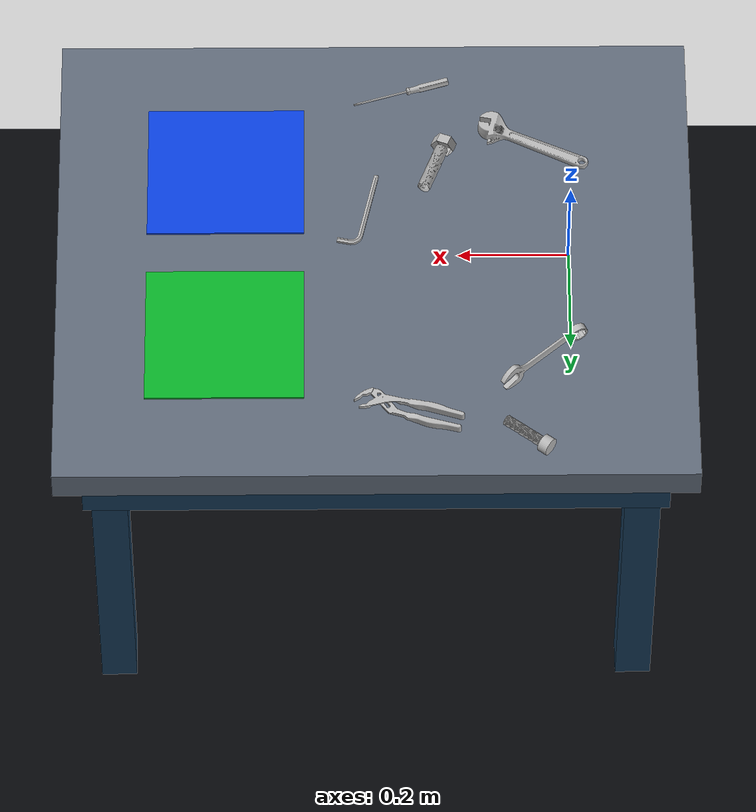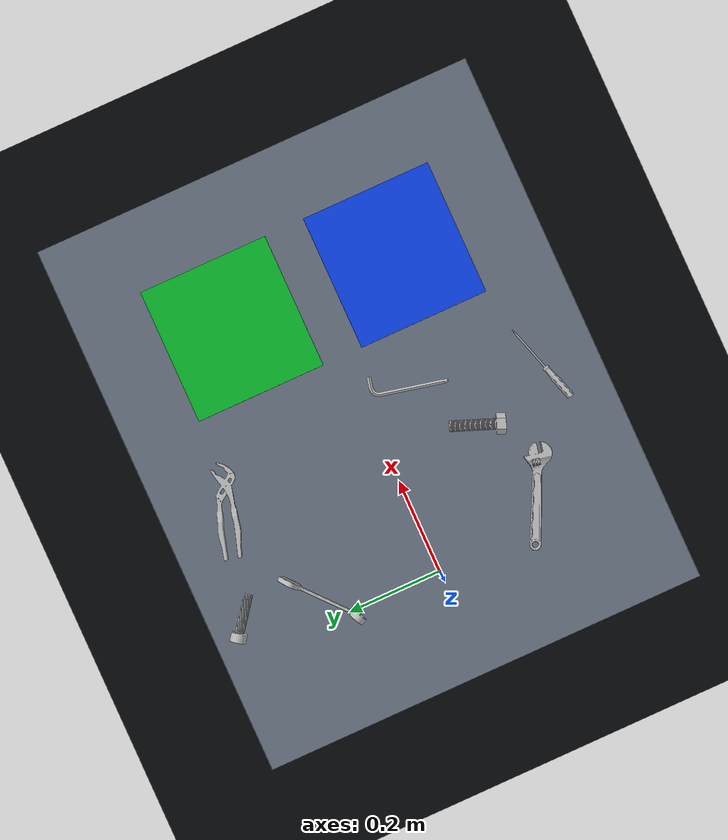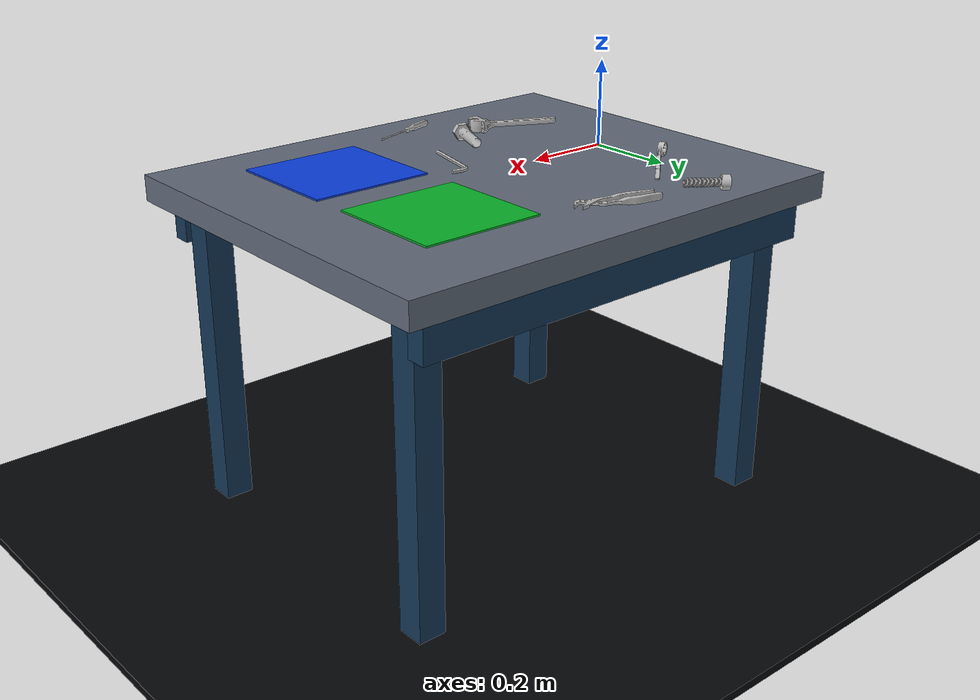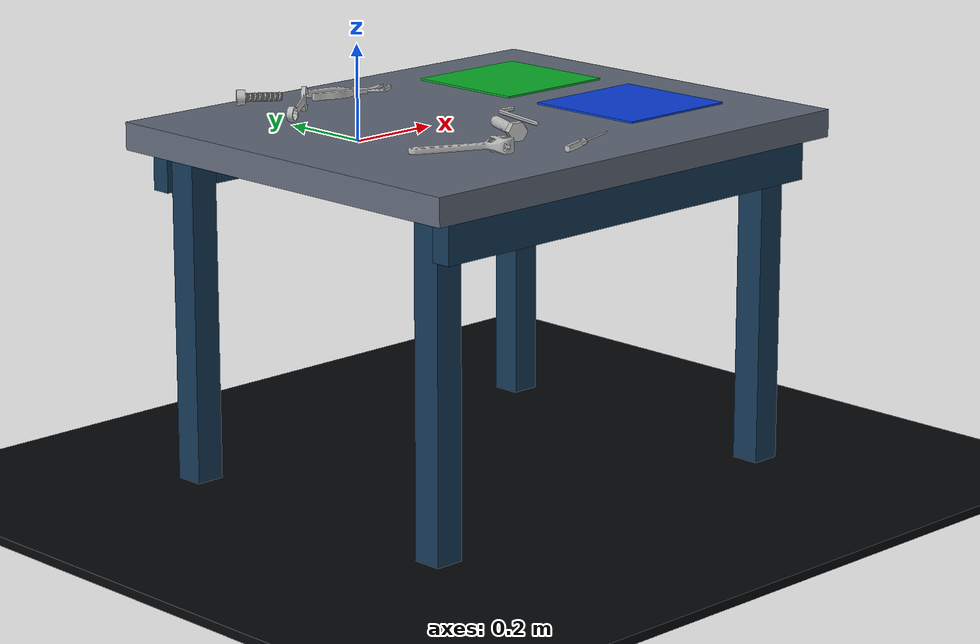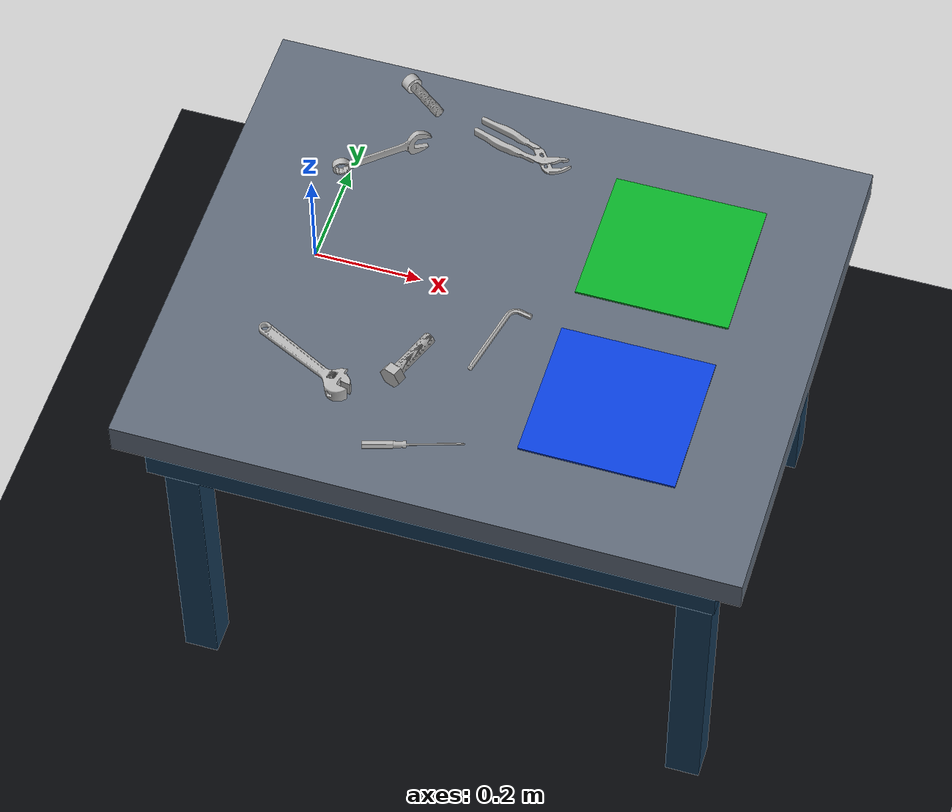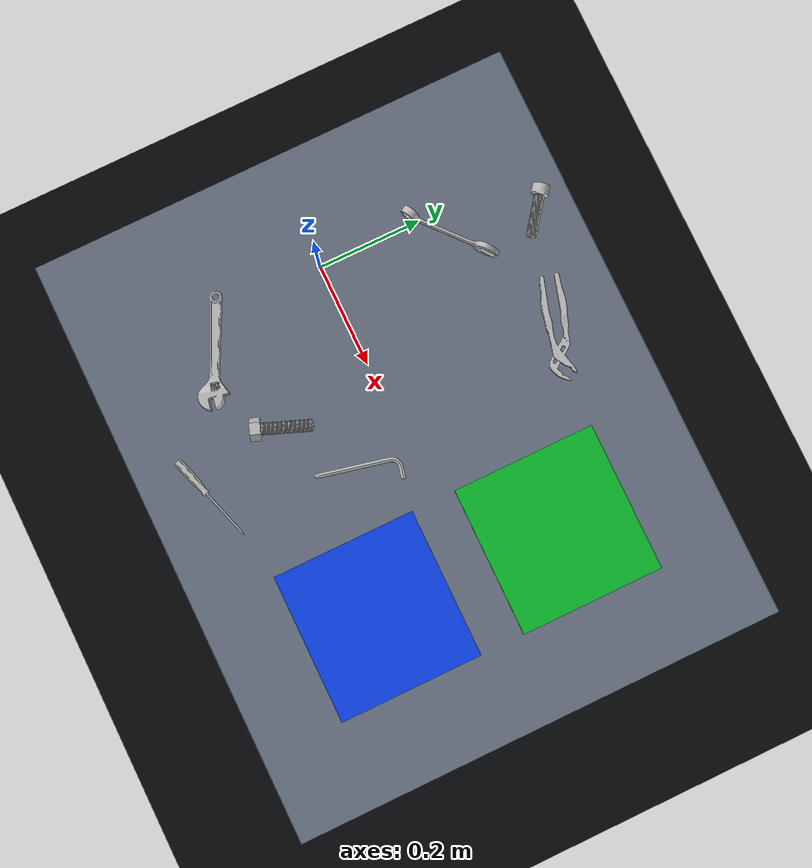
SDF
<sdf version="1.10">
 <world name="rm75_robotiq2f85_pickplace">
  <gravity>0 0 -9.81</gravity>
  <physics name="2ms" type="ignored">
   <max_step_size>0.002</max_step_size>
   <real_time_factor>1.0</real_time_factor>
  </physics>
  <plugin filename="gz-sim-physics-system" name="gz::sim::systems::Physics"/>
  <plugin filename="gz-sim-user-commands-system" name="gz::sim::systems::UserCommands"/>
  <plugin filename="gz-sim-scene-broadcaster-system" name="gz::sim::systems::SceneBroadcaster"/>
  <plugin filename="gz-sim-contact-system" name="gz::sim::systems::Contact"/>
  <plugin filename="libopeneta_attached_collision_filter_system.so" name="openeta::gazebo::AttachedCollisionFilter">
   <target_model>target_object</target_model>
   <target_link>target_link</target_link>
   <state_topic>/openeta/native_grasp/detachable_joint/target/collision_filter_state</state_topic>
   <state_request_topic>/openeta/native_grasp/detachable_joint/target/collision_filter_state/request</state_request_topic>
   <state_ack_topic>/openeta/native_grasp/detachable_joint/target/collision_filter_state/ack</state_ack_topic>
   <robot_mask>1</robot_mask>
   <detached_mask>65535</detached_mask>
   <attached_mask>2</attached_mask>
  </plugin>
  <plugin filename="gz-sim-sensors-system" name="gz::sim::systems::Sensors">
   <render_engine>ogre2</render_engine>
  </plugin>
  <scene>
   <ambient>0.28 0.30 0.34 1</ambient>
   <background>0.10 0.13 0.18 1</background>
   <shadows>true</shadows>
   <grid>false</grid>
  </scene>
  <light name="workcell_key" type="directional">
   <visualize>false</visualize>
   <pose>0 0 3 0 0 0</pose>
   <diffuse>0.64 0.67 0.72 1</diffuse>
   <specular>0.22 0.24 0.28 1</specular>
   <direction>-0.42 0.25 -0.87</direction>
  </light>
  <model name="industrial_floor">
   <static>true</static>
   <pose>0 0 -0.81 0 0 0</pose>
   <link name="floor_link">
    <collision name="floor_collision"><geometry><box><size>8 8 0.02</size></box></geometry></collision>
    <visual name="floor_visual">
     <geometry><box><size>8 8 0.02</size></box></geometry>
     <material>
      <ambient>0.012 0.015 0.021 1</ambient>
      <diffuse>0.022 0.027 0.038 1</diffuse>
      <specular>0.025 0.028 0.034 1</specular>
     </material>
    </visual>
   </link>
  </model>
  <model name="work_table">
   <static>true</static>
   <pose>0.35 0 -0.03 0 0 0</pose>
   <link name="table_link">
    <collision name="table_collision"><geometry><box><size>1.15 0.95 0.06</size></box></geometry></collision>
    <visual name="table_visual">
     <geometry><box><size>1.15 0.95 0.06</size></box></geometry>
     <material>
      <ambient>0.25 0.28 0.32 1</ambient>
      <diffuse>0.38 0.42 0.48 1</diffuse>
      <specular>0.14 0.16 0.19 1</specular>
     </material>
    </visual>
   </link>
  </model>
  <model name="workbench_frame">
   <static>true</static>
   <link name="frame_link">
    <visual name="front_rail">
     <pose>0.35 -0.425 -0.105 0 0 0</pose>
     <geometry><box><size>1.05 0.045 0.09</size></box></geometry>
     <material>
      <ambient>0.055 0.12 0.19 1</ambient>
      <diffuse>0.08 0.22 0.34 1</diffuse>
      <specular>0.18 0.20 0.24 1</specular>
     </material>
    </visual>
    <visual name="rear_rail">
     <pose>0.35 0.425 -0.105 0 0 0</pose>
     <geometry><box><size>1.05 0.045 0.09</size></box></geometry>
     <material>
      <ambient>0.055 0.12 0.19 1</ambient>
      <diffuse>0.08 0.22 0.34 1</diffuse>
      <specular>0.18 0.20 0.24 1</specular>
     </material>
    </visual>
    <collision name="front_rail_collision">
     <pose>0.35 -0.425 -0.105 0 0 0</pose>
     <geometry><box><size>1.05 0.045 0.09</size></box></geometry>
    </collision>
    <collision name="rear_rail_collision">
     <pose>0.35 0.425 -0.105 0 0 0</pose>
     <geometry><box><size>1.05 0.045 0.09</size></box></geometry>
    </collision>
    <visual name="leg_fl">
     <pose>-0.13 -0.37 -0.42 0 0 0</pose>
     <geometry><box><size>0.065 0.065 0.72</size></box></geometry>
     <material><ambient>0.055 0.12 0.19 1</ambient><diffuse>0.08 0.22 0.34 1</diffuse></material>
    </visual>
    <visual name="leg_fr">
     <pose>-0.13 0.37 -0.42 0 0 0</pose>
     <geometry><box><size>0.065 0.065 0.72</size></box></geometry>
     <material><ambient>0.055 0.12 0.19 1</ambient><diffuse>0.08 0.22 0.34 1</diffuse></material>
    </visual>
    <visual name="leg_rl">
     <pose>0.83 -0.37 -0.42 0 0 0</pose>
     <geometry><box><size>0.065 0.065 0.72</size></box></geometry>
     <material><ambient>0.055 0.12 0.19 1</ambient><diffuse>0.08 0.22 0.34 1</diffuse></material>
    </visual>
    <visual name="leg_rr">
     <pose>0.83 0.37 -0.42 0 0 0</pose>
     <geometry><box><size>0.065 0.065 0.72</size></box></geometry>
     <material><ambient>0.055 0.12 0.19 1</ambient><diffuse>0.08 0.22 0.34 1</diffuse></material>
    </visual>
    <collision name="leg_fl_collision">
     <pose>-0.13 -0.37 -0.42 0 0 0</pose>
     <geometry><box><size>0.065 0.065 0.72</size></box></geometry>
    </collision>
    <collision name="leg_fr_collision">
     <pose>-0.13 0.37 -0.42 0 0 0</pose>
     <geometry><box><size>0.065 0.065 0.72</size></box></geometry>
    </collision>
    <collision name="leg_rl_collision">
     <pose>0.83 -0.37 -0.42 0 0 0</pose>
     <geometry><box><size>0.065 0.065 0.72</size></box></geometry>
    </collision>
    <collision name="leg_rr_collision">
     <pose>0.83 0.37 -0.42 0 0 0</pose>
     <geometry><box><size>0.065 0.065 0.72</size></box></geometry>
    </collision>
   </link>
  </model>
  <model name="placement_zone_marker">
   <static>true</static>
   <pose>0.62 0.180 0.014 0 0 0</pose>
   <link name="marker_link">
    <visual name="marker_visual">
     <geometry><box><size>0.285 0.275 0.004</size></box></geometry>
     <material>
      <ambient>0.025 0.34 0.095 1</ambient>
      <diffuse>0.035 0.70 0.16 1</diffuse>
      <specular>0.08 0.10 0.08 1</specular>
     </material>
    </visual>
   </link>
  </model>
  <model name="blue_destination_marker">
   <static>true</static>
   <pose>0.62 -0.180 0.014 0 0 0</pose>
   <link name="marker_link">
    <visual name="marker_visual">
     <geometry><box><size>0.285 0.275 0.004</size></box></geometry>
     <material>
      <ambient>0.025 0.11 0.42 1</ambient>
      <diffuse>0.035 0.25 0.88 1</diffuse>
      <specular>0.08 0.09 0.14 1</specular>
     </material>
    </visual>
   </link>
  </model>
  <model name="target_object">
   <pose>0.06 -0.240 0.015 0 0 -0.45</pose>
   <link name="target_link">
    <inertial>
     <mass>0.30</mass>
     <inertia>
      <ixx>0.0001186</ixx>
      <iyy>0.0012325</iyy>
      <izz>0.0013061</izz>
      <ixy>0</ixy>
      <ixz>0</ixz>
      <iyz>0</iyz>
     </inertia>
    </inertial>
    <collision name="target_handle_collision">
     <pose>-0.025 0 -0.002 0 0 0</pose>
     <geometry><box><size>0.165 0.025 0.026</size></box></geometry>
    </collision>
    <collision name="target_jaw_collision">
     <pose>0.080 0 0 0 0 0</pose>
     <geometry><box><size>0.055 0.062 0.030</size></box></geometry>
    </collision>
    <visual name="target_visual">
     <pose>0 0 -0.0145 0 0 0</pose>
     <geometry>
      <mesh>
       <uri>model://openeta_rm75_robotiq2f85_sim/assets/industrial_workcell/adjustable_wrench.glb</uri>
       <scale>1 1 2.0</scale>
      </mesh>
     </geometry>
    </visual>
   </link>
  </model>
  <model name="silver_box_wrench">
   <pose>0.05 0.240 0.003 0 0 0.45</pose>
   <link name="silver_box_wrench_link">
    <inertial>
     <mass>0.18</mass>
     <inertia><ixx>0.00012</ixx><iyy>0.00055</iyy><izz>0.00058</izz><ixy>0</ixy><ixz>0</ixz><iyz>0</iyz></inertia>
    </inertial>
    <collision name="handle">
     <pose>0 0 0.007 0 0 0</pose>
     <geometry><box><size>0.15 0.022 0.014</size></box></geometry>
    </collision>
    <collision name="head_left">
     <pose>-0.078 0 0.009 0 0 0</pose>
     <geometry><cylinder><radius>0.023</radius><length>0.018</length></cylinder></geometry>
    </collision>
    <collision name="head_right">
     <pose>0.078 0 0.009 0 0 0</pose>
     <geometry><cylinder><radius>0.023</radius><length>0.018</length></cylinder></geometry>
    </collision>
    <visual name="mesh">
     <pose>0 0 0.0015 0 0 0</pose>
     <geometry>
      <mesh><uri>model://openeta_rm75_robotiq2f85_sim/assets/industrial_workcell/box_wrench.glb</uri></mesh>
     </geometry>
    </visual>
   </link>
  </model>
  <model name="red_m24_hex_bolt">
   <pose>0.24 -0.190 0.002 0 0 1.20</pose>
   <link name="red_m24_hex_bolt_link">
    <inertial>
     <mass>0.17</mass>
     <inertia><ixx>0.00005</ixx><iyy>0.00018</iyy><izz>0.00018</izz><ixy>0</ixy><ixz>0</ixz><iyz>0</iyz></inertia>
    </inertial>
    <collision name="shaft">
     <pose>0.012 0 0.012 0 1.57079632679 0</pose>
     <geometry><cylinder><radius>0.012</radius><length>0.095</length></cylinder></geometry>
    </collision>
    <collision name="head">
     <pose>-0.047 0 0.021 0 0 0</pose>
     <geometry><box><size>0.022 0.042 0.042</size></box></geometry>
    </collision>
    <visual name="mesh">
     <pose>0 0 0.0015 0 0 0</pose>
     <geometry>
      <mesh><uri>model://openeta_rm75_robotiq2f85_sim/assets/industrial_workcell/hex_bolt_24mm.glb</uri></mesh>
     </geometry>
    </visual>
   </link>
  </model>
  <model name="orange_m20_socket_bolt">
   <pose>0.08 0.400 0.002 0 0 -0.65</pose>
   <link name="orange_m20_socket_bolt_link">
    <inertial>
     <mass>0.13</mass>
     <inertia><ixx>0.00004</ixx><iyy>0.00013</iyy><izz>0.00013</izz><ixy>0</ixy><ixz>0</ixz><iyz>0</iyz></inertia>
    </inertial>
    <collision name="shaft">
     <pose>0.010 0 0.010 0 1.57079632679 0</pose>
     <geometry><cylinder><radius>0.010</radius><length>0.080</length></cylinder></geometry>
    </collision>
    <collision name="head">
     <pose>-0.040 0 0.017 0 1.57079632679 0</pose>
     <geometry><cylinder><radius>0.017</radius><length>0.018</length></cylinder></geometry>
    </collision>
    <visual name="mesh">
     <pose>0 0 0.0015 0 0 0</pose>
     <geometry>
      <mesh><uri>model://openeta_rm75_robotiq2f85_sim/assets/industrial_workcell/socket_bolt_20mm.glb</uri></mesh>
     </geometry>
    </visual>
   </link>
  </model>
  <model name="distractor_object">
   <pose>0.29 0.340 0.011 0 0 2.85</pose>
   <link name="distractor_link">
    <inertial>
     <mass>0.23</mass>
     <inertia><ixx>0.00016</ixx><iyy>0.00066</iyy><izz>0.00070</izz><ixy>0</ixy><ixz>0</ixz><iyz>0</iyz></inertia>
    </inertial>
    <collision name="handles">
     <pose>-0.025 0 -0.002 0 0 0</pose>
     <geometry><box><size>0.145 0.055 0.018</size></box></geometry>
    </collision>
    <collision name="jaws">
     <pose>0.075 0 -0.003 0 0 0</pose>
     <geometry><box><size>0.055 0.030 0.016</size></box></geometry>
    </collision>
    <visual name="mesh">
     <pose>0 0 -0.0095 0 0 0</pose>
     <geometry>
      <mesh><uri>model://openeta_rm75_robotiq2f85_sim/assets/industrial_workcell/pliers.glb</uri></mesh>
     </geometry>
    </visual>
   </link>
  </model>
  <model name="blue_black_screwdriver">
   <pose>0.30 -0.360 0.003 0 0 0.30</pose>
   <link name="blue_black_screwdriver_link">
    <inertial>
     <mass>0.12</mass>
     <inertia><ixx>0.00005</ixx><iyy>0.00034</iyy><izz>0.00034</izz><ixy>0</ixy><ixz>0</ixz><iyz>0</iyz></inertia>
    </inertial>
    <collision name="handle">
     <pose>-0.057 0 0.010 0 1.57079632679 0</pose>
     <geometry><cylinder><radius>0.010</radius><length>0.065</length></cylinder></geometry>
    </collision>
    <collision name="shaft">
     <pose>0.052 0 0.004 0 1.57079632679 0</pose>
     <geometry><cylinder><radius>0.004</radius><length>0.115</length></cylinder></geometry>
    </collision>
    <visual name="mesh">
     <pose>0 0 0.0015 0 0 0</pose>
     <geometry>
      <mesh><uri>model://openeta_rm75_robotiq2f85_sim/assets/industrial_workcell/screwdriver.glb</uri></mesh>
     </geometry>
    </visual>
   </link>
  </model>
  <model name="silver_allen_key">
   <pose>0.38 -0.100 0.003 0 0 1.35</pose>
   <link name="silver_allen_key_link">
    <inertial>
     <mass>0.055</mass>
     <inertia><ixx>0.00002</ixx><iyy>0.00011</iyy><izz>0.00012</izz><ixy>0</ixy><ixz>0</ixz><iyz>0</iyz></inertia>
    </inertial>
    <collision name="long_leg">
     <pose>-0.018 0 0.0055 0 0 0</pose>
     <geometry><box><size>0.125 0.011 0.011</size></box></geometry>
    </collision>
    <collision name="short_leg">
     <pose>0.068 0.020 0.0055 0 0 1.57079632679</pose>
     <geometry><box><size>0.050 0.011 0.011</size></box></geometry>
    </collision>
    <visual name="mesh">
     <pose>0 0 0.0015 0 0 0</pose>
     <geometry>
      <mesh><uri>model://openeta_rm75_robotiq2f85_sim/assets/industrial_workcell/allen_key.glb</uri></mesh>
     </geometry>
    </visual>
   </link>
  </model>
  <model name="openeta_top_camera">
   <static>true</static>
   <pose>0.38 0 1.35 0 1.57079632679 0</pose>
   <link name="top_camera_link">
    <sensor name="openeta_rgbd" type="rgbd_camera">
     <camera>
      <horizontal_fov>1.20</horizontal_fov>
      <image><width>1280</width><height>720</height><format>R8G8B8</format></image>
      <clip><near>0.08</near><far>8.0</far></clip>
     </camera>
     <always_on>true</always_on>
     <visualize>false</visualize>
     <update_rate>3</update_rate>
     <topic>openeta_rgbd</topic>
     <gz_frame_id>top_camera_optical_frame</gz_frame_id>
    </sensor>
   </link>
  </model>
 </world>
</sdf>
